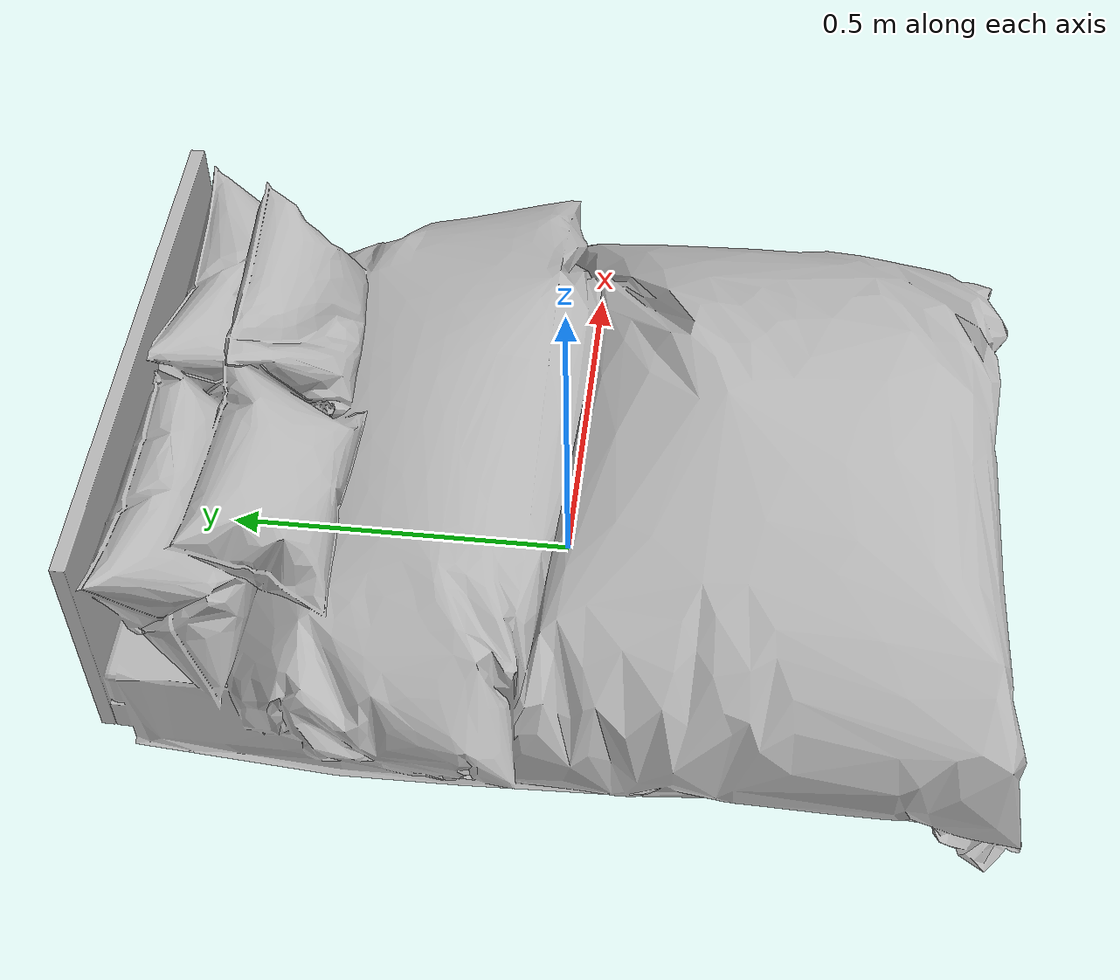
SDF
<?xml version="1.0"?>
<sdf version="1.4">
  <model name="bed">
    <static>false</static>
    <link name="link">
      <visual name="visual">
        <geometry>
          <mesh>
            <uri>model://bed/meshes/bed.dae</uri>
	<scale>0.5 0.5 0.5</scale>
          </mesh>
        </geometry>

      </visual>
      <collision name="collision_1">
	<pose>0.01 0.023 0.21 0 0 0</pose>
        <geometry>
		<box><size>1.80 2.07 0.42</size></box>
        </geometry>

      </collision>
	<collision name="collision_2">
	<pose>0.01 0.755 0.52 0 0 0</pose>
        <geometry>
	<box><size>1.80 0.6 1.04</size></box>
        </geometry>

      </collision>
    </link>
  </model>
</sdf>
